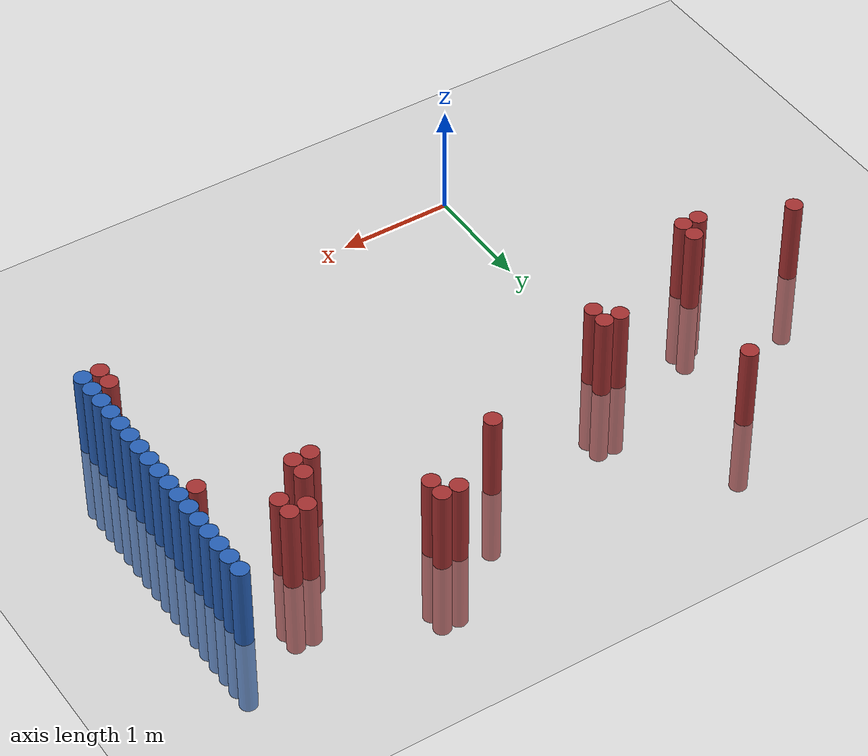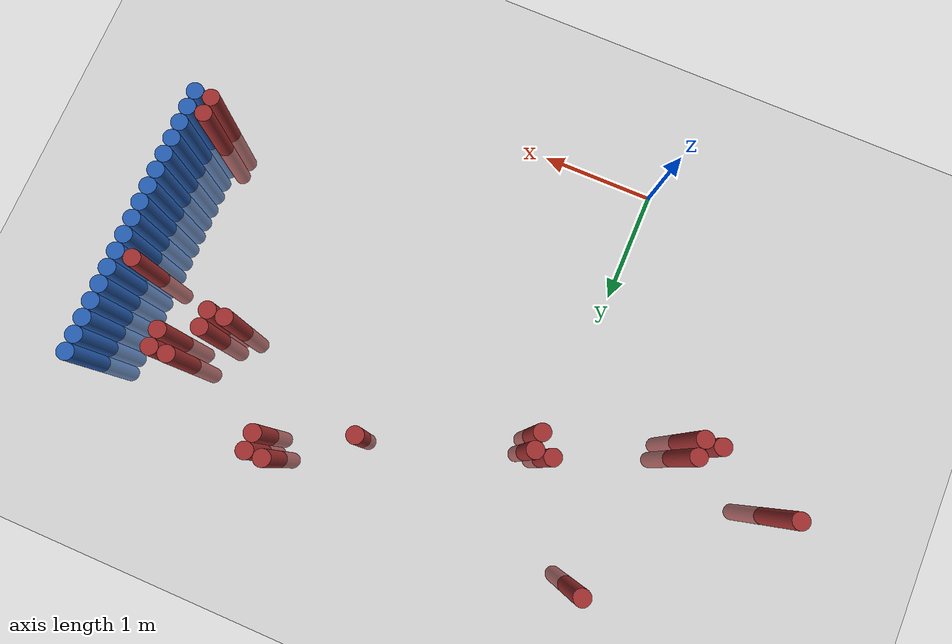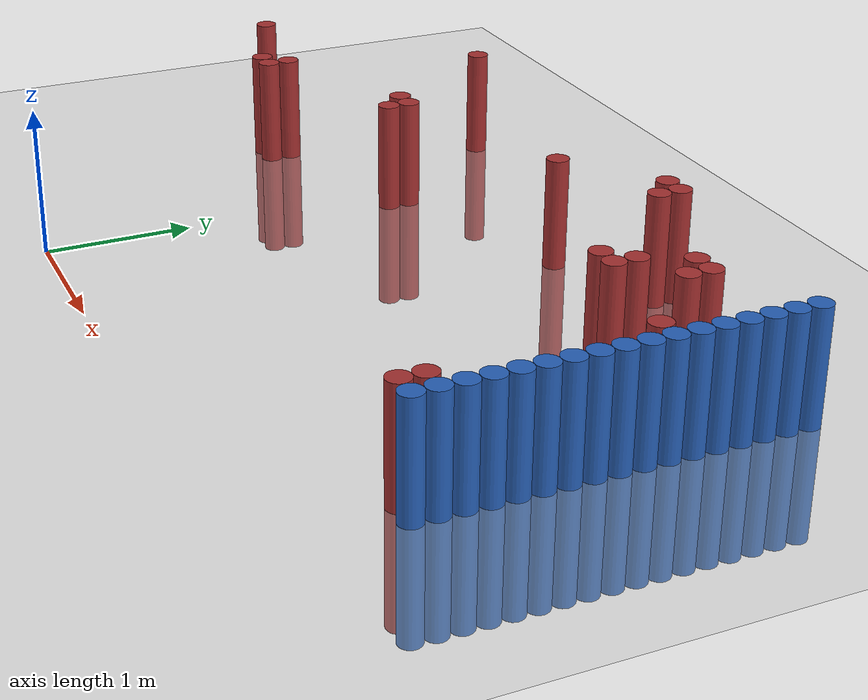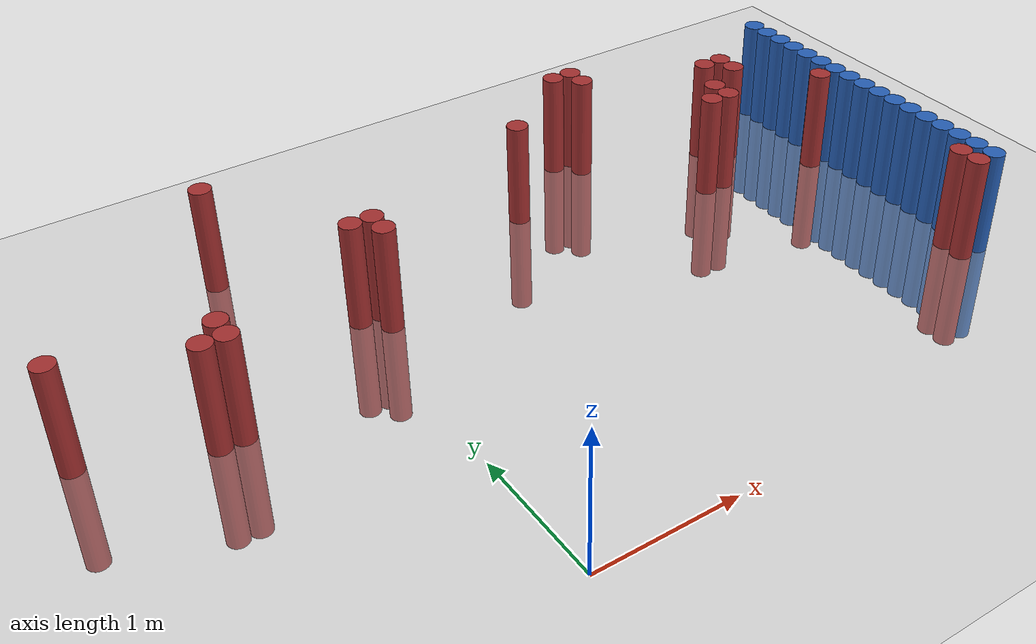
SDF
<sdf version="1.6">
 <world name="default">
  <model name="ground_plane">
   <static>1</static>
   <link name="link">
    <collision name="collision">
     <geometry><plane><normal>0 0 1</normal><size>100 100</size></plane></geometry>
     <surface><friction><ode><mu>100</mu><mu2>50</mu2></ode></friction></surface>
    </collision>
    <visual name="visual">
     <cast_shadows>0</cast_shadows>
     <geometry><plane><normal>0 0 1</normal><size>100 100</size></plane></geometry>
     <material>
      <script><uri>file://media/materials/scripts/gazebo.material</uri><name>Gazebo/Grey</name></script>
     </material>
    </visual>
   </link>
  </model>
  <model name="unit_cylinder_128">
   <static>1</static>
   <pose>3.925000 1.075000 0.000000 0.000000 0.000000 0.000000</pose>
   <link name="link">
    <inertial>
     <mass>1</mass>
     <inertia><ixx>0.145833</ixx><ixy>0</ixy><ixz>0</ixz><iyy>0.145833</iyy><iyz>0</iyz><izz>0.125</izz></inertia>
    </inertial>
    <collision name="collision">
     <geometry><cylinder><radius>0.075000</radius><length>1.5</length></cylinder></geometry>
    </collision>
    <visual name="visual">
     <geometry><cylinder><radius>0.075000</radius><length>1.5</length></cylinder></geometry>
     <material>
      <ambient>0.152000 0.379000 0.720000 1</ambient>
      <diffuse>0.152000 0.379000 0.720000 1</diffuse>
     </material>
     <material>
      <script><name>Gazebo/Grey</name><uri>file://media/materials/scripts/gazebo.material</uri></script>
     </material>
    </visual>
   </link>
  </model>
  <model name="unit_cylinder_130">
   <static>1</static>
   <pose>3.925000 1.225000 0.000000 0.000000 0.000000 0.000000</pose>
   <link name="link">
    <inertial>
     <mass>1</mass>
     <inertia><ixx>0.145833</ixx><ixy>0</ixy><ixz>0</ixz><iyy>0.145833</iyy><iyz>0</iyz><izz>0.125</izz></inertia>
    </inertial>
    <collision name="collision">
     <geometry><cylinder><radius>0.075000</radius><length>1.5</length></cylinder></geometry>
    </collision>
    <visual name="visual">
     <geometry><cylinder><radius>0.075000</radius><length>1.5</length></cylinder></geometry>
     <material>
      <ambient>0.152000 0.379000 0.720000 1</ambient>
      <diffuse>0.152000 0.379000 0.720000 1</diffuse>
     </material>
     <material>
      <script><name>Gazebo/Grey</name><uri>file://media/materials/scripts/gazebo.material</uri></script>
     </material>
    </visual>
   </link>
  </model>
  <model name="unit_cylinder_132">
   <static>1</static>
   <pose>3.925000 1.375000 0.000000 0.000000 0.000000 0.000000</pose>
   <link name="link">
    <inertial>
     <mass>1</mass>
     <inertia><ixx>0.145833</ixx><ixy>0</ixy><ixz>0</ixz><iyy>0.145833</iyy><iyz>0</iyz><izz>0.125</izz></inertia>
    </inertial>
    <collision name="collision">
     <geometry><cylinder><radius>0.075000</radius><length>1.5</length></cylinder></geometry>
    </collision>
    <visual name="visual">
     <geometry><cylinder><radius>0.075000</radius><length>1.5</length></cylinder></geometry>
     <material>
      <ambient>0.152000 0.379000 0.720000 1</ambient>
      <diffuse>0.152000 0.379000 0.720000 1</diffuse>
     </material>
     <material>
      <script><name>Gazebo/Grey</name><uri>file://media/materials/scripts/gazebo.material</uri></script>
     </material>
    </visual>
   </link>
  </model>
  <model name="unit_cylinder_134">
   <static>1</static>
   <pose>3.925000 1.525000 0.000000 0.000000 0.000000 0.000000</pose>
   <link name="link">
    <inertial>
     <mass>1</mass>
     <inertia><ixx>0.145833</ixx><ixy>0</ixy><ixz>0</ixz><iyy>0.145833</iyy><iyz>0</iyz><izz>0.125</izz></inertia>
    </inertial>
    <collision name="collision">
     <geometry><cylinder><radius>0.075000</radius><length>1.5</length></cylinder></geometry>
    </collision>
    <visual name="visual">
     <geometry><cylinder><radius>0.075000</radius><length>1.5</length></cylinder></geometry>
     <material>
      <ambient>0.152000 0.379000 0.720000 1</ambient>
      <diffuse>0.152000 0.379000 0.720000 1</diffuse>
     </material>
     <material>
      <script><name>Gazebo/Grey</name><uri>file://media/materials/scripts/gazebo.material</uri></script>
     </material>
    </visual>
   </link>
  </model>
  <model name="unit_cylinder_136">
   <static>1</static>
   <pose>3.925000 1.675000 0.000000 0.000000 0.000000 0.000000</pose>
   <link name="link">
    <inertial>
     <mass>1</mass>
     <inertia><ixx>0.145833</ixx><ixy>0</ixy><ixz>0</ixz><iyy>0.145833</iyy><iyz>0</iyz><izz>0.125</izz></inertia>
    </inertial>
    <collision name="collision">
     <geometry><cylinder><radius>0.075000</radius><length>1.5</length></cylinder></geometry>
    </collision>
    <visual name="visual">
     <geometry><cylinder><radius>0.075000</radius><length>1.5</length></cylinder></geometry>
     <material>
      <ambient>0.152000 0.379000 0.720000 1</ambient>
      <diffuse>0.152000 0.379000 0.720000 1</diffuse>
     </material>
     <material>
      <script><name>Gazebo/Grey</name><uri>file://media/materials/scripts/gazebo.material</uri></script>
     </material>
    </visual>
   </link>
  </model>
  <model name="unit_cylinder_138">
   <static>1</static>
   <pose>3.925000 1.825000 0.000000 0.000000 0.000000 0.000000</pose>
   <link name="link">
    <inertial>
     <mass>1</mass>
     <inertia><ixx>0.145833</ixx><ixy>0</ixy><ixz>0</ixz><iyy>0.145833</iyy><iyz>0</iyz><izz>0.125</izz></inertia>
    </inertial>
    <collision name="collision">
     <geometry><cylinder><radius>0.075000</radius><length>1.5</length></cylinder></geometry>
    </collision>
    <visual name="visual">
     <geometry><cylinder><radius>0.075000</radius><length>1.5</length></cylinder></geometry>
     <material>
      <ambient>0.152000 0.379000 0.720000 1</ambient>
      <diffuse>0.152000 0.379000 0.720000 1</diffuse>
     </material>
     <material>
      <script><name>Gazebo/Grey</name><uri>file://media/materials/scripts/gazebo.material</uri></script>
     </material>
    </visual>
   </link>
  </model>
  <model name="unit_cylinder_140">
   <static>1</static>
   <pose>3.925000 1.975000 0.000000 0.000000 0.000000 0.000000</pose>
   <link name="link">
    <inertial>
     <mass>1</mass>
     <inertia><ixx>0.145833</ixx><ixy>0</ixy><ixz>0</ixz><iyy>0.145833</iyy><iyz>0</iyz><izz>0.125</izz></inertia>
    </inertial>
    <collision name="collision">
     <geometry><cylinder><radius>0.075000</radius><length>1.5</length></cylinder></geometry>
    </collision>
    <visual name="visual">
     <geometry><cylinder><radius>0.075000</radius><length>1.5</length></cylinder></geometry>
     <material>
      <ambient>0.152000 0.379000 0.720000 1</ambient>
      <diffuse>0.152000 0.379000 0.720000 1</diffuse>
     </material>
     <material>
      <script><name>Gazebo/Grey</name><uri>file://media/materials/scripts/gazebo.material</uri></script>
     </material>
    </visual>
   </link>
  </model>
  <model name="unit_cylinder_142">
   <static>1</static>
   <pose>3.925000 2.125000 0.000000 0.000000 0.000000 0.000000</pose>
   <link name="link">
    <inertial>
     <mass>1</mass>
     <inertia><ixx>0.145833</ixx><ixy>0</ixy><ixz>0</ixz><iyy>0.145833</iyy><iyz>0</iyz><izz>0.125</izz></inertia>
    </inertial>
    <collision name="collision">
     <geometry><cylinder><radius>0.075000</radius><length>1.5</length></cylinder></geometry>
    </collision>
    <visual name="visual">
     <geometry><cylinder><radius>0.075000</radius><length>1.5</length></cylinder></geometry>
     <material>
      <ambient>0.152000 0.379000 0.720000 1</ambient>
      <diffuse>0.152000 0.379000 0.720000 1</diffuse>
     </material>
     <material>
      <script><name>Gazebo/Grey</name><uri>file://media/materials/scripts/gazebo.material</uri></script>
     </material>
    </visual>
   </link>
  </model>
  <model name="unit_cylinder_144">
   <static>1</static>
   <pose>3.925000 2.275000 0.000000 0.000000 0.000000 0.000000</pose>
   <link name="link">
    <inertial>
     <mass>1</mass>
     <inertia><ixx>0.145833</ixx><ixy>0</ixy><ixz>0</ixz><iyy>0.145833</iyy><iyz>0</iyz><izz>0.125</izz></inertia>
    </inertial>
    <collision name="collision">
     <geometry><cylinder><radius>0.075000</radius><length>1.5</length></cylinder></geometry>
    </collision>
    <visual name="visual">
     <geometry><cylinder><radius>0.075000</radius><length>1.5</length></cylinder></geometry>
     <material>
      <ambient>0.152000 0.379000 0.720000 1</ambient>
      <diffuse>0.152000 0.379000 0.720000 1</diffuse>
     </material>
     <material>
      <script><name>Gazebo/Grey</name><uri>file://media/materials/scripts/gazebo.material</uri></script>
     </material>
    </visual>
   </link>
  </model>
  <model name="unit_cylinder_146">
   <static>1</static>
   <pose>3.925000 2.425000 0.000000 0.000000 0.000000 0.000000</pose>
   <link name="link">
    <inertial>
     <mass>1</mass>
     <inertia><ixx>0.145833</ixx><ixy>0</ixy><ixz>0</ixz><iyy>0.145833</iyy><iyz>0</iyz><izz>0.125</izz></inertia>
    </inertial>
    <collision name="collision">
     <geometry><cylinder><radius>0.075000</radius><length>1.5</length></cylinder></geometry>
    </collision>
    <visual name="visual">
     <geometry><cylinder><radius>0.075000</radius><length>1.5</length></cylinder></geometry>
     <material>
      <ambient>0.152000 0.379000 0.720000 1</ambient>
      <diffuse>0.152000 0.379000 0.720000 1</diffuse>
     </material>
     <material>
      <script><name>Gazebo/Grey</name><uri>file://media/materials/scripts/gazebo.material</uri></script>
     </material>
    </visual>
   </link>
  </model>
  <model name="unit_cylinder_148">
   <static>1</static>
   <pose>3.925000 2.575000 0.000000 0.000000 0.000000 0.000000</pose>
   <link name="link">
    <inertial>
     <mass>1</mass>
     <inertia><ixx>0.145833</ixx><ixy>0</ixy><ixz>0</ixz><iyy>0.145833</iyy><iyz>0</iyz><izz>0.125</izz></inertia>
    </inertial>
    <collision name="collision">
     <geometry><cylinder><radius>0.075000</radius><length>1.5</length></cylinder></geometry>
    </collision>
    <visual name="visual">
     <geometry><cylinder><radius>0.075000</radius><length>1.5</length></cylinder></geometry>
     <material>
      <ambient>0.152000 0.379000 0.720000 1</ambient>
      <diffuse>0.152000 0.379000 0.720000 1</diffuse>
     </material>
     <material>
      <script><name>Gazebo/Grey</name><uri>file://media/materials/scripts/gazebo.material</uri></script>
     </material>
    </visual>
   </link>
  </model>
  <model name="unit_cylinder_150">
   <static>1</static>
   <pose>3.925000 2.725000 0.000000 0.000000 0.000000 0.000000</pose>
   <link name="link">
    <inertial>
     <mass>1</mass>
     <inertia><ixx>0.145833</ixx><ixy>0</ixy><ixz>0</ixz><iyy>0.145833</iyy><iyz>0</iyz><izz>0.125</izz></inertia>
    </inertial>
    <collision name="collision">
     <geometry><cylinder><radius>0.075000</radius><length>1.5</length></cylinder></geometry>
    </collision>
    <visual name="visual">
     <geometry><cylinder><radius>0.075000</radius><length>1.5</length></cylinder></geometry>
     <material>
      <ambient>0.152000 0.379000 0.720000 1</ambient>
      <diffuse>0.152000 0.379000 0.720000 1</diffuse>
     </material>
     <material>
      <script><name>Gazebo/Grey</name><uri>file://media/materials/scripts/gazebo.material</uri></script>
     </material>
    </visual>
   </link>
  </model>
  <model name="unit_cylinder_152">
   <static>1</static>
   <pose>3.925000 2.875000 0.000000 0.000000 0.000000 0.000000</pose>
   <link name="link">
    <inertial>
     <mass>1</mass>
     <inertia><ixx>0.145833</ixx><ixy>0</ixy><ixz>0</ixz><iyy>0.145833</iyy><iyz>0</iyz><izz>0.125</izz></inertia>
    </inertial>
    <collision name="collision">
     <geometry><cylinder><radius>0.075000</radius><length>1.5</length></cylinder></geometry>
    </collision>
    <visual name="visual">
     <geometry><cylinder><radius>0.075000</radius><length>1.5</length></cylinder></geometry>
     <material>
      <ambient>0.152000 0.379000 0.720000 1</ambient>
      <diffuse>0.152000 0.379000 0.720000 1</diffuse>
     </material>
     <material>
      <script><name>Gazebo/Grey</name><uri>file://media/materials/scripts/gazebo.material</uri></script>
     </material>
    </visual>
   </link>
  </model>
  <model name="unit_cylinder_154">
   <static>1</static>
   <pose>3.925000 3.025000 0.000000 0.000000 0.000000 0.000000</pose>
   <link name="link">
    <inertial>
     <mass>1</mass>
     <inertia><ixx>0.145833</ixx><ixy>0</ixy><ixz>0</ixz><iyy>0.145833</iyy><iyz>0</iyz><izz>0.125</izz></inertia>
    </inertial>
    <collision name="collision">
     <geometry><cylinder><radius>0.075000</radius><length>1.5</length></cylinder></geometry>
    </collision>
    <visual name="visual">
     <geometry><cylinder><radius>0.075000</radius><length>1.5</length></cylinder></geometry>
     <material>
      <ambient>0.152000 0.379000 0.720000 1</ambient>
      <diffuse>0.152000 0.379000 0.720000 1</diffuse>
     </material>
     <material>
      <script><name>Gazebo/Grey</name><uri>file://media/materials/scripts/gazebo.material</uri></script>
     </material>
    </visual>
   </link>
  </model>
  <model name="unit_cylinder_156">
   <static>1</static>
   <pose>3.925000 3.175000 0.000000 0.000000 0.000000 0.000000</pose>
   <link name="link">
    <inertial>
     <mass>1</mass>
     <inertia><ixx>0.145833</ixx><ixy>0</ixy><ixz>0</ixz><iyy>0.145833</iyy><iyz>0</iyz><izz>0.125</izz></inertia>
    </inertial>
    <collision name="collision">
     <geometry><cylinder><radius>0.075000</radius><length>1.5</length></cylinder></geometry>
    </collision>
    <visual name="visual">
     <geometry><cylinder><radius>0.075000</radius><length>1.5</length></cylinder></geometry>
     <material>
      <ambient>0.152000 0.379000 0.720000 1</ambient>
      <diffuse>0.152000 0.379000 0.720000 1</diffuse>
     </material>
     <material>
      <script><name>Gazebo/Grey</name><uri>file://media/materials/scripts/gazebo.material</uri></script>
     </material>
    </visual>
   </link>
  </model>
  <model name="unit_cylinder_158">
   <static>1</static>
   <pose>3.925000 3.325000 0.000000 0.000000 0.000000 0.000000</pose>
   <link name="link">
    <inertial>
     <mass>1</mass>
     <inertia><ixx>0.145833</ixx><ixy>0</ixy><ixz>0</ixz><iyy>0.145833</iyy><iyz>0</iyz><izz>0.125</izz></inertia>
    </inertial>
    <collision name="collision">
     <geometry><cylinder><radius>0.075000</radius><length>1.5</length></cylinder></geometry>
    </collision>
    <visual name="visual">
     <geometry><cylinder><radius>0.075000</radius><length>1.5</length></cylinder></geometry>
     <material>
      <ambient>0.152000 0.379000 0.720000 1</ambient>
      <diffuse>0.152000 0.379000 0.720000 1</diffuse>
     </material>
     <material>
      <script><name>Gazebo/Grey</name><uri>file://media/materials/scripts/gazebo.material</uri></script>
     </material>
    </visual>
   </link>
  </model>
  <model name="unit_cylinder_301">
   <static>1</static>
   <pose>-1.925000 2.275000 0.000000 0.000000 0.000000 0.000000</pose>
   <link name="link">
    <inertial>
     <mass>1</mass>
     <inertia><ixx>0.145833</ixx><ixy>0</ixy><ixz>0</ixz><iyy>0.145833</iyy><iyz>0</iyz><izz>0.125</izz></inertia>
    </inertial>
    <collision name="collision">
     <geometry><cylinder><radius>0.075000</radius><length>1.5</length></cylinder></geometry>
    </collision>
    <visual name="visual">
     <geometry><cylinder><radius>0.075000</radius><length>1.5</length></cylinder></geometry>
     <material>
      <ambient>0.648000 0.192000 0.192000 1</ambient>
      <diffuse>0.648000 0.192000 0.192000 1</diffuse>
     </material>
     <material>
      <script><name>Gazebo/Grey</name><uri>file://media/materials/scripts/gazebo.material</uri></script>
     </material>
    </visual>
   </link>
  </model>
  <model name="unit_cylinder_307">
   <static>1</static>
   <pose>-1.175000 1.975000 0.000000 0.000000 0.000000 0.000000</pose>
   <link name="link">
    <inertial>
     <mass>1</mass>
     <inertia><ixx>0.145833</ixx><ixy>0</ixy><ixz>0</ixz><iyy>0.145833</iyy><iyz>0</iyz><izz>0.125</izz></inertia>
    </inertial>
    <collision name="collision">
     <geometry><cylinder><radius>0.075000</radius><length>1.5</length></cylinder></geometry>
    </collision>
    <visual name="visual">
     <geometry><cylinder><radius>0.075000</radius><length>1.5</length></cylinder></geometry>
     <material>
      <ambient>0.648000 0.192000 0.192000 1</ambient>
      <diffuse>0.648000 0.192000 0.192000 1</diffuse>
     </material>
     <material>
      <script><name>Gazebo/Grey</name><uri>file://media/materials/scripts/gazebo.material</uri></script>
     </material>
    </visual>
   </link>
  </model>
  <model name="unit_cylinder_308">
   <static>1</static>
   <pose>-1.025000 1.975000 0.000000 0.000000 0.000000 0.000000</pose>
   <link name="link">
    <inertial>
     <mass>1</mass>
     <inertia><ixx>0.145833</ixx><ixy>0</ixy><ixz>0</ixz><iyy>0.145833</iyy><iyz>0</iyz><izz>0.125</izz></inertia>
    </inertial>
    <collision name="collision">
     <geometry><cylinder><radius>0.075000</radius><length>1.5</length></cylinder></geometry>
    </collision>
    <visual name="visual">
     <geometry><cylinder><radius>0.075000</radius><length>1.5</length></cylinder></geometry>
     <material>
      <ambient>0.648000 0.192000 0.192000 1</ambient>
      <diffuse>0.648000 0.192000 0.192000 1</diffuse>
     </material>
     <material>
      <script><name>Gazebo/Grey</name><uri>file://media/materials/scripts/gazebo.material</uri></script>
     </material>
    </visual>
   </link>
  </model>
  <model name="unit_cylinder_309">
   <static>1</static>
   <pose>-1.025000 2.125000 0.000000 0.000000 0.000000 0.000000</pose>
   <link name="link">
    <inertial>
     <mass>1</mass>
     <inertia><ixx>0.145833</ixx><ixy>0</ixy><ixz>0</ixz><iyy>0.145833</iyy><iyz>0</iyz><izz>0.125</izz></inertia>
    </inertial>
    <collision name="collision">
     <geometry><cylinder><radius>0.075000</radius><length>1.5</length></cylinder></geometry>
    </collision>
    <visual name="visual">
     <geometry><cylinder><radius>0.075000</radius><length>1.5</length></cylinder></geometry>
     <material>
      <ambient>0.648000 0.192000 0.192000 1</ambient>
      <diffuse>0.648000 0.192000 0.192000 1</diffuse>
     </material>
     <material>
      <script><name>Gazebo/Grey</name><uri>file://media/materials/scripts/gazebo.material</uri></script>
     </material>
    </visual>
   </link>
  </model>
  <model name="unit_cylinder_317">
   <static>1</static>
   <pose>-0.575000 3.475000 0.000000 0.000000 0.000000 0.000000</pose>
   <link name="link">
    <inertial>
     <mass>1</mass>
     <inertia><ixx>0.145833</ixx><ixy>0</ixy><ixz>0</ixz><iyy>0.145833</iyy><iyz>0</iyz><izz>0.125</izz></inertia>
    </inertial>
    <collision name="collision">
     <geometry><cylinder><radius>0.075000</radius><length>1.5</length></cylinder></geometry>
    </collision>
    <visual name="visual">
     <geometry><cylinder><radius>0.075000</radius><length>1.5</length></cylinder></geometry>
     <material>
      <ambient>0.648000 0.192000 0.192000 1</ambient>
      <diffuse>0.648000 0.192000 0.192000 1</diffuse>
     </material>
     <material>
      <script><name>Gazebo/Grey</name><uri>file://media/materials/scripts/gazebo.material</uri></script>
     </material>
    </visual>
   </link>
  </model>
  <model name="unit_cylinder_324">
   <static>1</static>
   <pose>0.025000 2.575000 0.000000 0.000000 0.000000 0.000000</pose>
   <link name="link">
    <inertial>
     <mass>1</mass>
     <inertia><ixx>0.145833</ixx><ixy>0</ixy><ixz>0</ixz><iyy>0.145833</iyy><iyz>0</iyz><izz>0.125</izz></inertia>
    </inertial>
    <collision name="collision">
     <geometry><cylinder><radius>0.075000</radius><length>1.5</length></cylinder></geometry>
    </collision>
    <visual name="visual">
     <geometry><cylinder><radius>0.075000</radius><length>1.5</length></cylinder></geometry>
     <material>
      <ambient>0.648000 0.192000 0.192000 1</ambient>
      <diffuse>0.648000 0.192000 0.192000 1</diffuse>
     </material>
     <material>
      <script><name>Gazebo/Grey</name><uri>file://media/materials/scripts/gazebo.material</uri></script>
     </material>
    </visual>
   </link>
  </model>
  <model name="unit_cylinder_327">
   <static>1</static>
   <pose>0.175000 2.425000 0.000000 0.000000 0.000000 0.000000</pose>
   <link name="link">
    <inertial>
     <mass>1</mass>
     <inertia><ixx>0.145833</ixx><ixy>0</ixy><ixz>0</ixz><iyy>0.145833</iyy><iyz>0</iyz><izz>0.125</izz></inertia>
    </inertial>
    <collision name="collision">
     <geometry><cylinder><radius>0.075000</radius><length>1.5</length></cylinder></geometry>
    </collision>
    <visual name="visual">
     <geometry><cylinder><radius>0.075000</radius><length>1.5</length></cylinder></geometry>
     <material>
      <ambient>0.648000 0.192000 0.192000 1</ambient>
      <diffuse>0.648000 0.192000 0.192000 1</diffuse>
     </material>
     <material>
      <script><name>Gazebo/Grey</name><uri>file://media/materials/scripts/gazebo.material</uri></script>
     </material>
    </visual>
   </link>
  </model>
  <model name="unit_cylinder_328">
   <static>1</static>
   <pose>0.175000 2.575000 0.000000 0.000000 0.000000 0.000000</pose>
   <link name="link">
    <inertial>
     <mass>1</mass>
     <inertia><ixx>0.145833</ixx><ixy>0</ixy><ixz>0</ixz><iyy>0.145833</iyy><iyz>0</iyz><izz>0.125</izz></inertia>
    </inertial>
    <collision name="collision">
     <geometry><cylinder><radius>0.075000</radius><length>1.5</length></cylinder></geometry>
    </collision>
    <visual name="visual">
     <geometry><cylinder><radius>0.075000</radius><length>1.5</length></cylinder></geometry>
     <material>
      <ambient>0.648000 0.192000 0.192000 1</ambient>
      <diffuse>0.648000 0.192000 0.192000 1</diffuse>
     </material>
     <material>
      <script><name>Gazebo/Grey</name><uri>file://media/materials/scripts/gazebo.material</uri></script>
     </material>
    </visual>
   </link>
  </model>
  <model name="unit_cylinder_343">
   <static>1</static>
   <pose>1.525000 3.025000 0.000000 0.000000 0.000000 0.000000</pose>
   <link name="link">
    <inertial>
     <mass>1</mass>
     <inertia><ixx>0.145833</ixx><ixy>0</ixy><ixz>0</ixz><iyy>0.145833</iyy><iyz>0</iyz><izz>0.125</izz></inertia>
    </inertial>
    <collision name="collision">
     <geometry><cylinder><radius>0.075000</radius><length>1.5</length></cylinder></geometry>
    </collision>
    <visual name="visual">
     <geometry><cylinder><radius>0.075000</radius><length>1.5</length></cylinder></geometry>
     <material>
      <ambient>0.648000 0.192000 0.192000 1</ambient>
      <diffuse>0.648000 0.192000 0.192000 1</diffuse>
     </material>
     <material>
      <script><name>Gazebo/Grey</name><uri>file://media/materials/scripts/gazebo.material</uri></script>
     </material>
    </visual>
   </link>
  </model>
  <model name="unit_cylinder_353">
   <static>1</static>
   <pose>2.125000 3.475000 0.000000 0.000000 0.000000 0.000000</pose>
   <link name="link">
    <inertial>
     <mass>1</mass>
     <inertia><ixx>0.145833</ixx><ixy>0</ixy><ixz>0</ixz><iyy>0.145833</iyy><iyz>0</iyz><izz>0.125</izz></inertia>
    </inertial>
    <collision name="collision">
     <geometry><cylinder><radius>0.075000</radius><length>1.5</length></cylinder></geometry>
    </collision>
    <visual name="visual">
     <geometry><cylinder><radius>0.075000</radius><length>1.5</length></cylinder></geometry>
     <material>
      <ambient>0.648000 0.192000 0.192000 1</ambient>
      <diffuse>0.648000 0.192000 0.192000 1</diffuse>
     </material>
     <material>
      <script><name>Gazebo/Grey</name><uri>file://media/materials/scripts/gazebo.material</uri></script>
     </material>
    </visual>
   </link>
  </model>
  <model name="unit_cylinder_355">
   <static>1</static>
   <pose>2.275000 3.325000 0.000000 0.000000 0.000000 0.000000</pose>
   <link name="link">
    <inertial>
     <mass>1</mass>
     <inertia><ixx>0.145833</ixx><ixy>0</ixy><ixz>0</ixz><iyy>0.145833</iyy><iyz>0</iyz><izz>0.125</izz></inertia>
    </inertial>
    <collision name="collision">
     <geometry><cylinder><radius>0.075000</radius><length>1.5</length></cylinder></geometry>
    </collision>
    <visual name="visual">
     <geometry><cylinder><radius>0.075000</radius><length>1.5</length></cylinder></geometry>
     <material>
      <ambient>0.648000 0.192000 0.192000 1</ambient>
      <diffuse>0.648000 0.192000 0.192000 1</diffuse>
     </material>
     <material>
      <script><name>Gazebo/Grey</name><uri>file://media/materials/scripts/gazebo.material</uri></script>
     </material>
    </visual>
   </link>
  </model>
  <model name="unit_cylinder_356">
   <static>1</static>
   <pose>2.275000 3.475000 0.000000 0.000000 0.000000 0.000000</pose>
   <link name="link">
    <inertial>
     <mass>1</mass>
     <inertia><ixx>0.145833</ixx><ixy>0</ixy><ixz>0</ixz><iyy>0.145833</iyy><iyz>0</iyz><izz>0.125</izz></inertia>
    </inertial>
    <collision name="collision">
     <geometry><cylinder><radius>0.075000</radius><length>1.5</length></cylinder></geometry>
    </collision>
    <visual name="visual">
     <geometry><cylinder><radius>0.075000</radius><length>1.5</length></cylinder></geometry>
     <material>
      <ambient>0.648000 0.192000 0.192000 1</ambient>
      <diffuse>0.648000 0.192000 0.192000 1</diffuse>
     </material>
     <material>
      <script><name>Gazebo/Grey</name><uri>file://media/materials/scripts/gazebo.material</uri></script>
     </material>
    </visual>
   </link>
  </model>
  <model name="unit_cylinder_357">
   <static>1</static>
   <pose>2.875000 2.575000 0.000000 0.000000 0.000000 0.000000</pose>
   <link name="link">
    <inertial>
     <mass>1</mass>
     <inertia><ixx>0.145833</ixx><ixy>0</ixy><ixz>0</ixz><iyy>0.145833</iyy><iyz>0</iyz><izz>0.125</izz></inertia>
    </inertial>
    <collision name="collision">
     <geometry><cylinder><radius>0.075000</radius><length>1.5</length></cylinder></geometry>
    </collision>
    <visual name="visual">
     <geometry><cylinder><radius>0.075000</radius><length>1.5</length></cylinder></geometry>
     <material>
      <ambient>0.648000 0.192000 0.192000 1</ambient>
      <diffuse>0.648000 0.192000 0.192000 1</diffuse>
     </material>
     <material>
      <script><name>Gazebo/Grey</name><uri>file://media/materials/scripts/gazebo.material</uri></script>
     </material>
    </visual>
   </link>
  </model>
  <model name="unit_cylinder_358">
   <static>1</static>
   <pose>3.025000 2.575000 0.000000 0.000000 0.000000 0.000000</pose>
   <link name="link">
    <inertial>
     <mass>1</mass>
     <inertia><ixx>0.145833</ixx><ixy>0</ixy><ixz>0</ixz><iyy>0.145833</iyy><iyz>0</iyz><izz>0.125</izz></inertia>
    </inertial>
    <collision name="collision">
     <geometry><cylinder><radius>0.075000</radius><length>1.5</length></cylinder></geometry>
    </collision>
    <visual name="visual">
     <geometry><cylinder><radius>0.075000</radius><length>1.5</length></cylinder></geometry>
     <material>
      <ambient>0.648000 0.192000 0.192000 1</ambient>
      <diffuse>0.648000 0.192000 0.192000 1</diffuse>
     </material>
     <material>
      <script><name>Gazebo/Grey</name><uri>file://media/materials/scripts/gazebo.material</uri></script>
     </material>
    </visual>
   </link>
  </model>
  <model name="unit_cylinder_359">
   <static>1</static>
   <pose>3.025000 2.725000 0.000000 0.000000 0.000000 0.000000</pose>
   <link name="link">
    <inertial>
     <mass>1</mass>
     <inertia><ixx>0.145833</ixx><ixy>0</ixy><ixz>0</ixz><iyy>0.145833</iyy><iyz>0</iyz><izz>0.125</izz></inertia>
    </inertial>
    <collision name="collision">
     <geometry><cylinder><radius>0.075000</radius><length>1.5</length></cylinder></geometry>
    </collision>
    <visual name="visual">
     <geometry><cylinder><radius>0.075000</radius><length>1.5</length></cylinder></geometry>
     <material>
      <ambient>0.648000 0.192000 0.192000 1</ambient>
      <diffuse>0.648000 0.192000 0.192000 1</diffuse>
     </material>
     <material>
      <script><name>Gazebo/Grey</name><uri>file://media/materials/scripts/gazebo.material</uri></script>
     </material>
    </visual>
   </link>
  </model>
  <model name="unit_cylinder_361">
   <static>1</static>
   <pose>3.175000 3.025000 0.000000 0.000000 0.000000 0.000000</pose>
   <link name="link">
    <inertial>
     <mass>1</mass>
     <inertia><ixx>0.145833</ixx><ixy>0</ixy><ixz>0</ixz><iyy>0.145833</iyy><iyz>0</iyz><izz>0.125</izz></inertia>
    </inertial>
    <collision name="collision">
     <geometry><cylinder><radius>0.075000</radius><length>1.5</length></cylinder></geometry>
    </collision>
    <visual name="visual">
     <geometry><cylinder><radius>0.075000</radius><length>1.5</length></cylinder></geometry>
     <material>
      <ambient>0.648000 0.192000 0.192000 1</ambient>
      <diffuse>0.648000 0.192000 0.192000 1</diffuse>
     </material>
     <material>
      <script><name>Gazebo/Grey</name><uri>file://media/materials/scripts/gazebo.material</uri></script>
     </material>
    </visual>
   </link>
  </model>
  <model name="unit_cylinder_366">
   <static>1</static>
   <pose>3.325000 2.875000 0.000000 0.000000 0.000000 0.000000</pose>
   <link name="link">
    <inertial>
     <mass>1</mass>
     <inertia><ixx>0.145833</ixx><ixy>0</ixy><ixz>0</ixz><iyy>0.145833</iyy><iyz>0</iyz><izz>0.125</izz></inertia>
    </inertial>
    <collision name="collision">
     <geometry><cylinder><radius>0.075000</radius><length>1.5</length></cylinder></geometry>
    </collision>
    <visual name="visual">
     <geometry><cylinder><radius>0.075000</radius><length>1.5</length></cylinder></geometry>
     <material>
      <ambient>0.648000 0.192000 0.192000 1</ambient>
      <diffuse>0.648000 0.192000 0.192000 1</diffuse>
     </material>
     <material>
      <script><name>Gazebo/Grey</name><uri>file://media/materials/scripts/gazebo.material</uri></script>
     </material>
    </visual>
   </link>
  </model>
  <model name="unit_cylinder_367">
   <static>1</static>
   <pose>3.325000 3.025000 0.000000 0.000000 0.000000 0.000000</pose>
   <link name="link">
    <inertial>
     <mass>1</mass>
     <inertia><ixx>0.145833</ixx><ixy>0</ixy><ixz>0</ixz><iyy>0.145833</iyy><iyz>0</iyz><izz>0.125</izz></inertia>
    </inertial>
    <collision name="collision">
     <geometry><cylinder><radius>0.075000</radius><length>1.5</length></cylinder></geometry>
    </collision>
    <visual name="visual">
     <geometry><cylinder><radius>0.075000</radius><length>1.5</length></cylinder></geometry>
     <material>
      <ambient>0.648000 0.192000 0.192000 1</ambient>
      <diffuse>0.648000 0.192000 0.192000 1</diffuse>
     </material>
     <material>
      <script><name>Gazebo/Grey</name><uri>file://media/materials/scripts/gazebo.material</uri></script>
     </material>
    </visual>
   </link>
  </model>
  <model name="unit_cylinder_378">
   <static>1</static>
   <pose>3.775000 0.925000 0.000000 0.000000 0.000000 0.000000</pose>
   <link name="link">
    <inertial>
     <mass>1</mass>
     <inertia><ixx>0.145833</ixx><ixy>0</ixy><ixz>0</ixz><iyy>0.145833</iyy><iyz>0</iyz><izz>0.125</izz></inertia>
    </inertial>
    <collision name="collision">
     <geometry><cylinder><radius>0.075000</radius><length>1.5</length></cylinder></geometry>
    </collision>
    <visual name="visual">
     <geometry><cylinder><radius>0.075000</radius><length>1.5</length></cylinder></geometry>
     <material>
      <ambient>0.648000 0.192000 0.192000 1</ambient>
      <diffuse>0.648000 0.192000 0.192000 1</diffuse>
     </material>
     <material>
      <script><name>Gazebo/Grey</name><uri>file://media/materials/scripts/gazebo.material</uri></script>
     </material>
    </visual>
   </link>
  </model>
  <model name="unit_cylinder_379">
   <static>1</static>
   <pose>3.775000 1.075000 0.000000 0.000000 0.000000 0.000000</pose>
   <link name="link">
    <inertial>
     <mass>1</mass>
     <inertia><ixx>0.145833</ixx><ixy>0</ixy><ixz>0</ixz><iyy>0.145833</iyy><iyz>0</iyz><izz>0.125</izz></inertia>
    </inertial>
    <collision name="collision">
     <geometry><cylinder><radius>0.075000</radius><length>1.5</length></cylinder></geometry>
    </collision>
    <visual name="visual">
     <geometry><cylinder><radius>0.075000</radius><length>1.5</length></cylinder></geometry>
     <material>
      <ambient>0.648000 0.192000 0.192000 1</ambient>
      <diffuse>0.648000 0.192000 0.192000 1</diffuse>
     </material>
     <material>
      <script><name>Gazebo/Grey</name><uri>file://media/materials/scripts/gazebo.material</uri></script>
     </material>
    </visual>
   </link>
  </model>
  <model name="unit_cylinder_380">
   <static>1</static>
   <pose>3.775000 2.425000 0.000000 0.000000 0.000000 0.000000</pose>
   <link name="link">
    <inertial>
     <mass>1</mass>
     <inertia><ixx>0.145833</ixx><ixy>0</ixy><ixz>0</ixz><iyy>0.145833</iyy><iyz>0</iyz><izz>0.125</izz></inertia>
    </inertial>
    <collision name="collision">
     <geometry><cylinder><radius>0.075000</radius><length>1.5</length></cylinder></geometry>
    </collision>
    <visual name="visual">
     <geometry><cylinder><radius>0.075000</radius><length>1.5</length></cylinder></geometry>
     <material>
      <ambient>0.648000 0.192000 0.192000 1</ambient>
      <diffuse>0.648000 0.192000 0.192000 1</diffuse>
     </material>
     <material>
      <script><name>Gazebo/Grey</name><uri>file://media/materials/scripts/gazebo.material</uri></script>
     </material>
    </visual>
   </link>
  </model>
  <model name="unit_cylinder_401">
   <static>1</static>
   <pose>3.925000 0.925000 0.000000 0.000000 0.000000 0.000000</pose>
   <link name="link">
    <inertial>
     <mass>1</mass>
     <inertia><ixx>0.145833</ixx><ixy>0</ixy><ixz>0</ixz><iyy>0.145833</iyy><iyz>0</iyz><izz>0.125</izz></inertia>
    </inertial>
    <collision name="collision">
     <geometry><cylinder><radius>0.075000</radius><length>1.5</length></cylinder></geometry>
    </collision>
    <visual name="visual">
     <geometry><cylinder><radius>0.075000</radius><length>1.5</length></cylinder></geometry>
     <material>
      <ambient>0.152000 0.379000 0.720000 1</ambient>
      <diffuse>0.152000 0.379000 0.720000 1</diffuse>
     </material>
     <material>
      <script><name>Gazebo/Grey</name><uri>file://media/materials/scripts/gazebo.material</uri></script>
     </material>
    </visual>
   </link>
  </model>
  <model name="unit_cylinder_402">
   <static>1</static>
   <pose>3.925000 1.075000 0.000000 0.000000 0.000000 0.000000</pose>
   <link name="link">
    <inertial>
     <mass>1</mass>
     <inertia><ixx>0.145833</ixx><ixy>0</ixy><ixz>0</ixz><iyy>0.145833</iyy><iyz>0</iyz><izz>0.125</izz></inertia>
    </inertial>
    <collision name="collision">
     <geometry><cylinder><radius>0.075000</radius><length>1.5</length></cylinder></geometry>
    </collision>
    <visual name="visual">
     <geometry><cylinder><radius>0.075000</radius><length>1.5</length></cylinder></geometry>
     <material>
      <ambient>0.152000 0.379000 0.720000 1</ambient>
      <diffuse>0.152000 0.379000 0.720000 1</diffuse>
     </material>
     <material>
      <script><name>Gazebo/Grey</name><uri>file://media/materials/scripts/gazebo.material</uri></script>
     </material>
    </visual>
   </link>
  </model>
  <model name="unit_cylinder_403">
   <static>1</static>
   <pose>3.925000 1.225000 0.000000 0.000000 0.000000 0.000000</pose>
   <link name="link">
    <inertial>
     <mass>1</mass>
     <inertia><ixx>0.145833</ixx><ixy>0</ixy><ixz>0</ixz><iyy>0.145833</iyy><iyz>0</iyz><izz>0.125</izz></inertia>
    </inertial>
    <collision name="collision">
     <geometry><cylinder><radius>0.075000</radius><length>1.5</length></cylinder></geometry>
    </collision>
    <visual name="visual">
     <geometry><cylinder><radius>0.075000</radius><length>1.5</length></cylinder></geometry>
     <material>
      <ambient>0.152000 0.379000 0.720000 1</ambient>
      <diffuse>0.152000 0.379000 0.720000 1</diffuse>
     </material>
     <material>
      <script><name>Gazebo/Grey</name><uri>file://media/materials/scripts/gazebo.material</uri></script>
     </material>
    </visual>
   </link>
  </model>
  <model name="unit_cylinder_404">
   <static>1</static>
   <pose>3.925000 1.375000 0.000000 0.000000 0.000000 0.000000</pose>
   <link name="link">
    <inertial>
     <mass>1</mass>
     <inertia><ixx>0.145833</ixx><ixy>0</ixy><ixz>0</ixz><iyy>0.145833</iyy><iyz>0</iyz><izz>0.125</izz></inertia>
    </inertial>
    <collision name="collision">
     <geometry><cylinder><radius>0.075000</radius><length>1.5</length></cylinder></geometry>
    </collision>
    <visual name="visual">
     <geometry><cylinder><radius>0.075000</radius><length>1.5</length></cylinder></geometry>
     <material>
      <ambient>0.152000 0.379000 0.720000 1</ambient>
      <diffuse>0.152000 0.379000 0.720000 1</diffuse>
     </material>
     <material>
      <script><name>Gazebo/Grey</name><uri>file://media/materials/scripts/gazebo.material</uri></script>
     </material>
    </visual>
   </link>
  </model>
  <model name="unit_cylinder_405">
   <static>1</static>
   <pose>3.925000 1.525000 0.000000 0.000000 0.000000 0.000000</pose>
   <link name="link">
    <inertial>
     <mass>1</mass>
     <inertia><ixx>0.145833</ixx><ixy>0</ixy><ixz>0</ixz><iyy>0.145833</iyy><iyz>0</iyz><izz>0.125</izz></inertia>
    </inertial>
    <collision name="collision">
     <geometry><cylinder><radius>0.075000</radius><length>1.5</length></cylinder></geometry>
    </collision>
    <visual name="visual">
     <geometry><cylinder><radius>0.075000</radius><length>1.5</length></cylinder></geometry>
     <material>
      <ambient>0.152000 0.379000 0.720000 1</ambient>
      <diffuse>0.152000 0.379000 0.720000 1</diffuse>
     </material>
     <material>
      <script><name>Gazebo/Grey</name><uri>file://media/materials/scripts/gazebo.material</uri></script>
     </material>
    </visual>
   </link>
  </model>
  <model name="unit_cylinder_406">
   <static>1</static>
   <pose>3.925000 1.675000 0.000000 0.000000 0.000000 0.000000</pose>
   <link name="link">
    <inertial>
     <mass>1</mass>
     <inertia><ixx>0.145833</ixx><ixy>0</ixy><ixz>0</ixz><iyy>0.145833</iyy><iyz>0</iyz><izz>0.125</izz></inertia>
    </inertial>
    <collision name="collision">
     <geometry><cylinder><radius>0.075000</radius><length>1.5</length></cylinder></geometry>
    </collision>
    <visual name="visual">
     <geometry><cylinder><radius>0.075000</radius><length>1.5</length></cylinder></geometry>
     <material>
      <ambient>0.152000 0.379000 0.720000 1</ambient>
      <diffuse>0.152000 0.379000 0.720000 1</diffuse>
     </material>
     <material>
      <script><name>Gazebo/Grey</name><uri>file://media/materials/scripts/gazebo.material</uri></script>
     </material>
    </visual>
   </link>
  </model>
  <model name="unit_cylinder_407">
   <static>1</static>
   <pose>3.925000 1.825000 0.000000 0.000000 0.000000 0.000000</pose>
   <link name="link">
    <inertial>
     <mass>1</mass>
     <inertia><ixx>0.145833</ixx><ixy>0</ixy><ixz>0</ixz><iyy>0.145833</iyy><iyz>0</iyz><izz>0.125</izz></inertia>
    </inertial>
    <collision name="collision">
     <geometry><cylinder><radius>0.075000</radius><length>1.5</length></cylinder></geometry>
    </collision>
    <visual name="visual">
     <geometry><cylinder><radius>0.075000</radius><length>1.5</length></cylinder></geometry>
     <material>
      <ambient>0.152000 0.379000 0.720000 1</ambient>
      <diffuse>0.152000 0.379000 0.720000 1</diffuse>
     </material>
     <material>
      <script><name>Gazebo/Grey</name><uri>file://media/materials/scripts/gazebo.material</uri></script>
     </material>
    </visual>
   </link>
  </model>
  <model name="unit_cylinder_408">
   <static>1</static>
   <pose>3.925000 1.975000 0.000000 0.000000 0.000000 0.000000</pose>
   <link name="link">
    <inertial>
     <mass>1</mass>
     <inertia><ixx>0.145833</ixx><ixy>0</ixy><ixz>0</ixz><iyy>0.145833</iyy><iyz>0</iyz><izz>0.125</izz></inertia>
    </inertial>
    <collision name="collision">
     <geometry><cylinder><radius>0.075000</radius><length>1.5</length></cylinder></geometry>
    </collision>
    <visual name="visual">
     <geometry><cylinder><radius>0.075000</radius><length>1.5</length></cylinder></geometry>
     <material>
      <ambient>0.152000 0.379000 0.720000 1</ambient>
      <diffuse>0.152000 0.379000 0.720000 1</diffuse>
     </material>
     <material>
      <script><name>Gazebo/Grey</name><uri>file://media/materials/scripts/gazebo.material</uri></script>
     </material>
    </visual>
   </link>
  </model>
  <model name="unit_cylinder_409">
   <static>1</static>
   <pose>3.925000 2.125000 0.000000 0.000000 0.000000 0.000000</pose>
   <link name="link">
    <inertial>
     <mass>1</mass>
     <inertia><ixx>0.145833</ixx><ixy>0</ixy><ixz>0</ixz><iyy>0.145833</iyy><iyz>0</iyz><izz>0.125</izz></inertia>
    </inertial>
    <collision name="collision">
     <geometry><cylinder><radius>0.075000</radius><length>1.5</length></cylinder></geometry>
    </collision>
    <visual name="visual">
     <geometry><cylinder><radius>0.075000</radius><length>1.5</length></cylinder></geometry>
     <material>
      <ambient>0.152000 0.379000 0.720000 1</ambient>
      <diffuse>0.152000 0.379000 0.720000 1</diffuse>
     </material>
     <material>
      <script><name>Gazebo/Grey</name><uri>file://media/materials/scripts/gazebo.material</uri></script>
     </material>
    </visual>
   </link>
  </model>
  <model name="unit_cylinder_410">
   <static>1</static>
   <pose>3.925000 2.275000 0.000000 0.000000 0.000000 0.000000</pose>
   <link name="link">
    <inertial>
     <mass>1</mass>
     <inertia><ixx>0.145833</ixx><ixy>0</ixy><ixz>0</ixz><iyy>0.145833</iyy><iyz>0</iyz><izz>0.125</izz></inertia>
    </inertial>
    <collision name="collision">
     <geometry><cylinder><radius>0.075000</radius><length>1.5</length></cylinder></geometry>
    </collision>
    <visual name="visual">
     <geometry><cylinder><radius>0.075000</radius><length>1.5</length></cylinder></geometry>
     <material>
      <ambient>0.152000 0.379000 0.720000 1</ambient>
      <diffuse>0.152000 0.379000 0.720000 1</diffuse>
     </material>
     <material>
      <script><name>Gazebo/Grey</name><uri>file://media/materials/scripts/gazebo.material</uri></script>
     </material>
    </visual>
   </link>
  </model>
  <model name="unit_cylinder_411">
   <static>1</static>
   <pose>3.925000 2.425000 0.000000 0.000000 0.000000 0.000000</pose>
   <link name="link">
    <inertial>
     <mass>1</mass>
     <inertia><ixx>0.145833</ixx><ixy>0</ixy><ixz>0</ixz><iyy>0.145833</iyy><iyz>0</iyz><izz>0.125</izz></inertia>
    </inertial>
    <collision name="collision">
     <geometry><cylinder><radius>0.075000</radius><length>1.5</length></cylinder></geometry>
    </collision>
    <visual name="visual">
     <geometry><cylinder><radius>0.075000</radius><length>1.5</length></cylinder></geometry>
     <material>
      <ambient>0.152000 0.379000 0.720000 1</ambient>
      <diffuse>0.152000 0.379000 0.720000 1</diffuse>
     </material>
     <material>
      <script><name>Gazebo/Grey</name><uri>file://media/materials/scripts/gazebo.material</uri></script>
     </material>
    </visual>
   </link>
  </model>
  <model name="unit_cylinder_412">
   <static>1</static>
   <pose>3.925000 2.575000 0.000000 0.000000 0.000000 0.000000</pose>
   <link name="link">
    <inertial>
     <mass>1</mass>
     <inertia><ixx>0.145833</ixx><ixy>0</ixy><ixz>0</ixz><iyy>0.145833</iyy><iyz>0</iyz><izz>0.125</izz></inertia>
    </inertial>
    <collision name="collision">
     <geometry><cylinder><radius>0.075000</radius><length>1.5</length></cylinder></geometry>
    </collision>
    <visual name="visual">
     <geometry><cylinder><radius>0.075000</radius><length>1.5</length></cylinder></geometry>
     <material>
      <ambient>0.152000 0.379000 0.720000 1</ambient>
      <diffuse>0.152000 0.379000 0.720000 1</diffuse>
     </material>
     <material>
      <script><name>Gazebo/Grey</name><uri>file://media/materials/scripts/gazebo.material</uri></script>
     </material>
    </visual>
   </link>
  </model>
  <model name="unit_cylinder_413">
   <static>1</static>
   <pose>3.925000 2.725000 0.000000 0.000000 0.000000 0.000000</pose>
   <link name="link">
    <inertial>
     <mass>1</mass>
     <inertia><ixx>0.145833</ixx><ixy>0</ixy><ixz>0</ixz><iyy>0.145833</iyy><iyz>0</iyz><izz>0.125</izz></inertia>
    </inertial>
    <collision name="collision">
     <geometry><cylinder><radius>0.075000</radius><length>1.5</length></cylinder></geometry>
    </collision>
    <visual name="visual">
     <geometry><cylinder><radius>0.075000</radius><length>1.5</length></cylinder></geometry>
     <material>
      <ambient>0.152000 0.379000 0.720000 1</ambient>
      <diffuse>0.152000 0.379000 0.720000 1</diffuse>
     </material>
     <material>
      <script><name>Gazebo/Grey</name><uri>file://media/materials/scripts/gazebo.material</uri></script>
     </material>
    </visual>
   </link>
  </model>
  <model name="unit_cylinder_414">
   <static>1</static>
   <pose>3.925000 2.875000 0.000000 0.000000 0.000000 0.000000</pose>
   <link name="link">
    <inertial>
     <mass>1</mass>
     <inertia><ixx>0.145833</ixx><ixy>0</ixy><ixz>0</ixz><iyy>0.145833</iyy><iyz>0</iyz><izz>0.125</izz></inertia>
    </inertial>
    <collision name="collision">
     <geometry><cylinder><radius>0.075000</radius><length>1.5</length></cylinder></geometry>
    </collision>
    <visual name="visual">
     <geometry><cylinder><radius>0.075000</radius><length>1.5</length></cylinder></geometry>
     <material>
      <ambient>0.152000 0.379000 0.720000 1</ambient>
      <diffuse>0.152000 0.379000 0.720000 1</diffuse>
     </material>
     <material>
      <script><name>Gazebo/Grey</name><uri>file://media/materials/scripts/gazebo.material</uri></script>
     </material>
    </visual>
   </link>
  </model>
  <model name="unit_cylinder_415">
   <static>1</static>
   <pose>3.925000 3.025000 0.000000 0.000000 0.000000 0.000000</pose>
   <link name="link">
    <inertial>
     <mass>1</mass>
     <inertia><ixx>0.145833</ixx><ixy>0</ixy><ixz>0</ixz><iyy>0.145833</iyy><iyz>0</iyz><izz>0.125</izz></inertia>
    </inertial>
    <collision name="collision">
     <geometry><cylinder><radius>0.075000</radius><length>1.5</length></cylinder></geometry>
    </collision>
    <visual name="visual">
     <geometry><cylinder><radius>0.075000</radius><length>1.5</length></cylinder></geometry>
     <material>
      <ambient>0.152000 0.379000 0.720000 1</ambient>
      <diffuse>0.152000 0.379000 0.720000 1</diffuse>
     </material>
     <material>
      <script><name>Gazebo/Grey</name><uri>file://media/materials/scripts/gazebo.material</uri></script>
     </material>
    </visual>
   </link>
  </model>
  <model name="unit_cylinder_416">
   <static>1</static>
   <pose>3.925000 3.175000 0.000000 0.000000 0.000000 0.000000</pose>
   <link name="link">
    <inertial>
     <mass>1</mass>
     <inertia><ixx>0.145833</ixx><ixy>0</ixy><ixz>0</ixz><iyy>0.145833</iyy><iyz>0</iyz><izz>0.125</izz></inertia>
    </inertial>
    <collision name="collision">
     <geometry><cylinder><radius>0.075000</radius><length>1.5</length></cylinder></geometry>
    </collision>
    <visual name="visual">
     <geometry><cylinder><radius>0.075000</radius><length>1.5</length></cylinder></geometry>
     <material>
      <ambient>0.152000 0.379000 0.720000 1</ambient>
      <diffuse>0.152000 0.379000 0.720000 1</diffuse>
     </material>
     <material>
      <script><name>Gazebo/Grey</name><uri>file://media/materials/scripts/gazebo.material</uri></script>
     </material>
    </visual>
   </link>
  </model>
  <model name="unit_cylinder_417">
   <static>1</static>
   <pose>3.925000 3.325000 0.000000 0.000000 0.000000 0.000000</pose>
   <link name="link">
    <inertial>
     <mass>1</mass>
     <inertia><ixx>0.145833</ixx><ixy>0</ixy><ixz>0</ixz><iyy>0.145833</iyy><iyz>0</iyz><izz>0.125</izz></inertia>
    </inertial>
    <collision name="collision">
     <geometry><cylinder><radius>0.075000</radius><length>1.5</length></cylinder></geometry>
    </collision>
    <visual name="visual">
     <geometry><cylinder><radius>0.075000</radius><length>1.5</length></cylinder></geometry>
     <material>
      <ambient>0.152000 0.379000 0.720000 1</ambient>
      <diffuse>0.152000 0.379000 0.720000 1</diffuse>
     </material>
     <material>
      <script><name>Gazebo/Grey</name><uri>file://media/materials/scripts/gazebo.material</uri></script>
     </material>
    </visual>
   </link>
  </model>
 </world>
</sdf>
